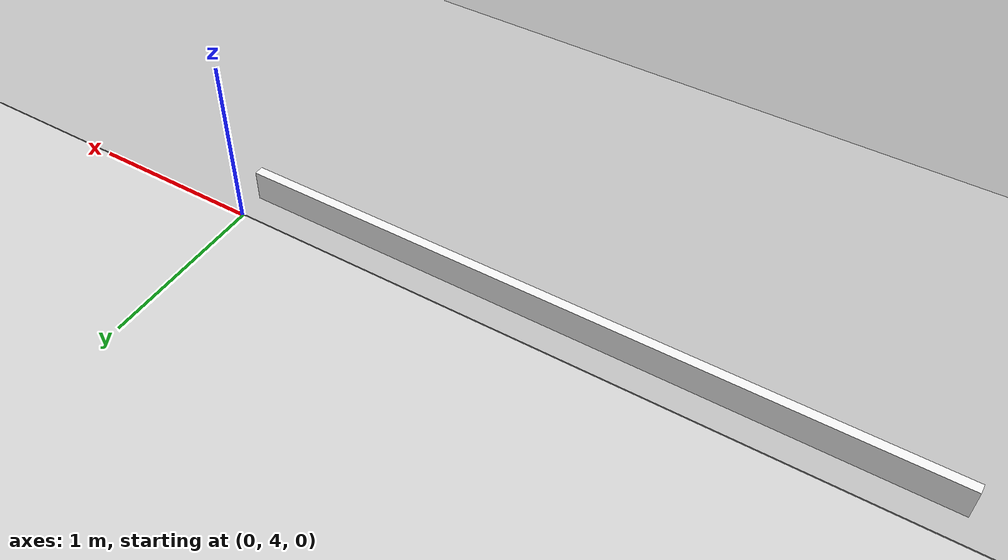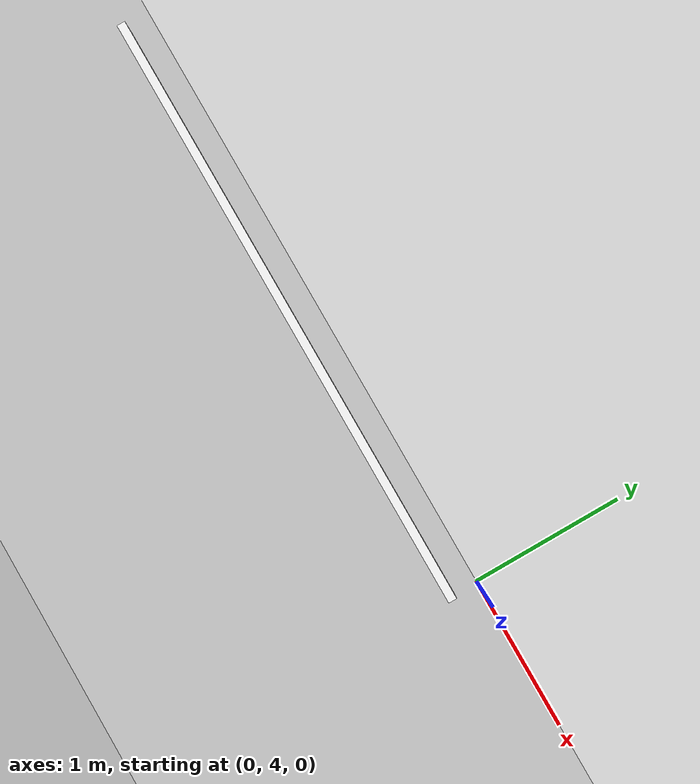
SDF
<?xml version="1.0" ?>
<sdf version="1.5">
  <world name="default">

    <include>
      <uri>model://ground_plane</uri>
      <pose> 0 0 -.0001 0 0 0 </pose>
    </include>

    <light name="inner_point_white1" type="point">
      <pose>5 3 4 0 0 0</pose>
      <diffuse>0.2 0.2 0.2 1</diffuse>
      <specular>0.1 0.1 0.1 1</specular>
      <attenuation>
        <range>20</range>
        <linear>0.1</linear>
        <constant>0.2</constant>
        <quadratic>0</quadratic>
      </attenuation>
      <cast_shadows>0</cast_shadows>
      <direction>0 0 -1</direction>
    </light>
    <light name="inner_point_white2" type="point">
      <pose>0 3 4 0 0 0</pose>
      <diffuse>0.2 0.2 0.2 1</diffuse>
      <specular>0.1 0.1 0.1 1</specular>
      <attenuation>
        <range>20</range>
        <linear>0.1</linear>
        <constant>0.2</constant>
        <quadratic>0</quadratic>
      </attenuation>
      <cast_shadows>0</cast_shadows>
      <direction>0 0 -1</direction>
    </light>
    <light name="inner_point_white3" type="point">
      <pose>-5 3 4 0 0 0</pose>
      <diffuse>0.2 0.2 0.2 1</diffuse>
      <specular>0.1 0.1 0.1 1</specular>
      <attenuation>
        <range>20</range>
        <linear>0.1</linear>
        <constant>0.2</constant>
        <quadratic>0</quadratic>
      </attenuation>
      <cast_shadows>0</cast_shadows>
      <direction>0 0 -1</direction>
    </light>
    <light name="inner_point_white4" type="point">
      <pose>-5 -3 4 0 0 0</pose>
      <diffuse>0.2 0.2 0.2 1</diffuse>
      <specular>0.1 0.1 0.1 1</specular>
      <attenuation>
        <range>20</range>
        <linear>0.1</linear>
        <constant>0.2</constant>
        <quadratic>0</quadratic>
      </attenuation>
      <cast_shadows>0</cast_shadows>
      <direction>0 0 -1</direction>
    </light>
    <light name="inner_point_white5" type="point">
      <pose>0 -3 4 0 0 0</pose>
      <diffuse>0.2 0.2 0.2 1</diffuse>
      <specular>0.1 0.1 0.1 1</specular>
      <attenuation>
        <range>20</range>
        <linear>0.1</linear>
        <constant>0.2</constant>
        <quadratic>0</quadratic>
      </attenuation>
      <cast_shadows>0</cast_shadows>
      <direction>0 0 -1</direction>
    </light>
    <light name="inner_point_white6" type="point">
      <pose>5 -3 4 0 0 0</pose>
      <diffuse>0.2 0.2 0.2 1</diffuse>
      <specular>0.1 0.1 0.1 1</specular>
      <attenuation>
        <range>20</range>
        <linear>0.1</linear>
        <constant>0.2</constant>
        <quadratic>0</quadratic>
      </attenuation>
      <cast_shadows>0</cast_shadows>
      <direction>0 0 -1</direction>
    </light>

    <include>
      <uri>model://pista_tmr_2021</uri>
      <pose> 0 0 0.01 0 0 0 </pose>
      <name>PistaTMR2021</name>
    </include>

    <include>
      <static>1</static>
      <pose>-2.0 3.82 0 0 0 0</pose>
      <uri>model://wall</uri>
      <name>parking_wall</name>
    </include>

    <gui fullscreen="0">
      <camera name="user_camera">
        <pose>1.15 1.93 2.85 0 1.08 1.07</pose>
        <view_controller>orbit</view_controller>
      </camera>
    </gui>
  </world>
</sdf>

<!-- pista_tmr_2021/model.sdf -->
<sdf version="1.4">
	<model name="pista_tmr_2021">
		<static>true</static>
		<link name="pista_link">
			<collision name="collision">
				<geometry>
					<plane>
						<normal>0 0 1</normal>
						<size>12 8</size>
					</plane>
				</geometry>
				<surface>
					<friction>
						<ode>
							<mu>100</mu>
							<mu2>50</mu2>
						</ode>
					</friction>
				</surface>
			</collision>
			<visual name="visual">
				<geometry>
					<plane>
						<normal>0 0 1</normal>
						<size>12 8</size>
					</plane>
				</geometry>
				<material>
					<script>
						<uri>model://pista_tmr_2021/materials/scripts</uri>
						<uri>model://pista_tmr_2021/materials/textures</uri>
						<name>pista_tmr_2021/Image</name>
					</script>
				</material>
			</visual>
		</link>
	</model>
</sdf>

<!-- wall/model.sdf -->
<sdf version="1.4">
    <model name='wall'>
      <link name='link'>
        <inertial>
          <mass>50</mass>
          <inertia>
            <ixx>1</ixx>
            <ixy>0</ixy>
            <ixz>0</ixz>
            <iyy>1</iyy>
            <iyz>0</iyz>
            <izz>1</izz>
          </inertia>
        </inertial>
        <visual name='wall_visual'>
          <geometry>
            <box>
              <size>4.0 0.055 0.4</size>
            </box>
          </geometry>
          <material>
            <script>
              <uri>model://base_materials/wall/scripts</uri>
              <uri>model://base_materials/wall/textures</uri>
              <name>wall/white_noise</name>
            </script>
          </material>
        </visual>
        <collision name='wall_collision'>
          <geometry>
            <box>
              <size>4.0 0.055 0.4</size>
            </box>
          </geometry>
          <max_contacts>10</max_contacts>
          <surface>
            <bounce/>
            <friction>
              <ode/>
            </friction>
            <contact>
              <ode/>
            </contact>
          </surface>
        </collision>

        <velocity_decay>
          <linear>0</linear>
          <angular>0</angular>
        </velocity_decay>
        <self_collide>0</self_collide>
        <kinematic>0</kinematic>
        <gravity>1</gravity>
      </link>
      <static>1</static>
    </model>
</sdf>
